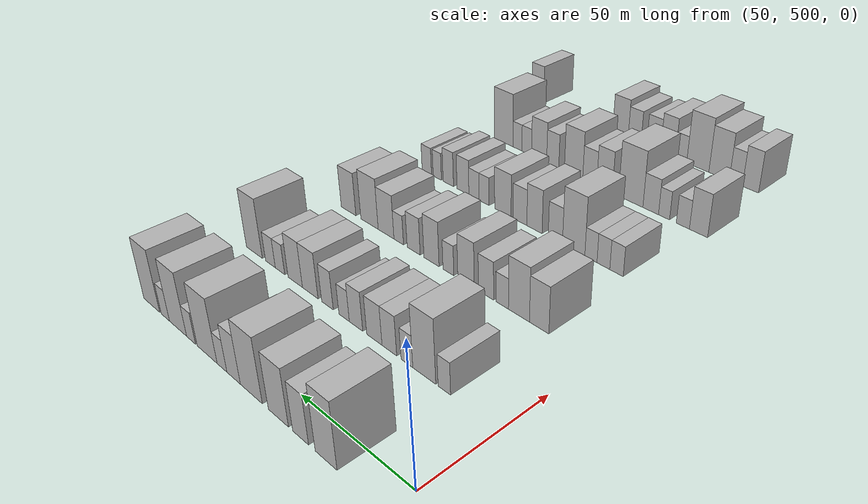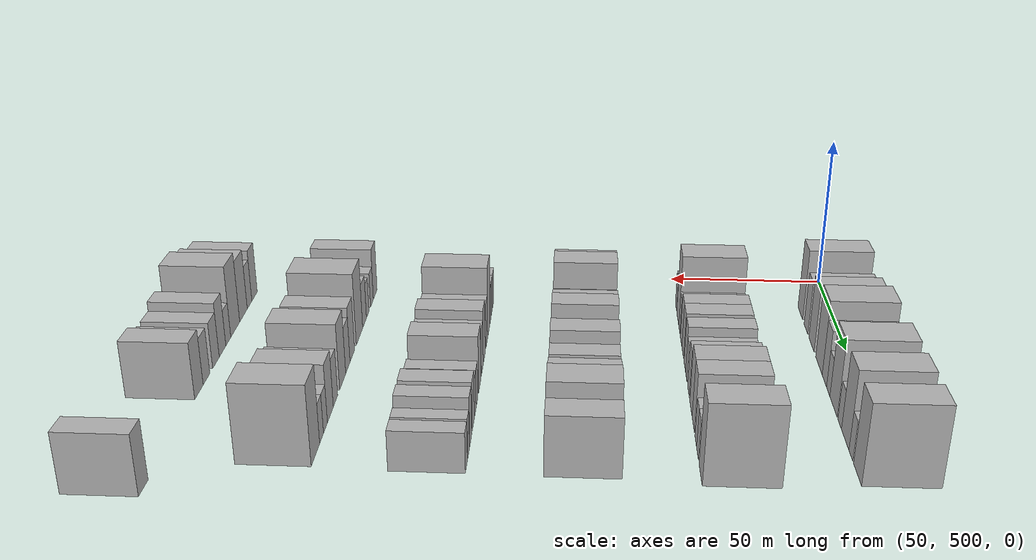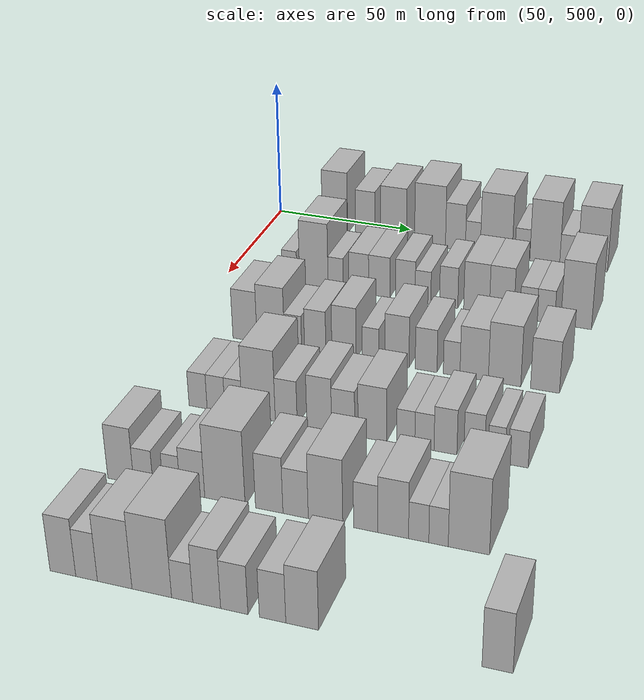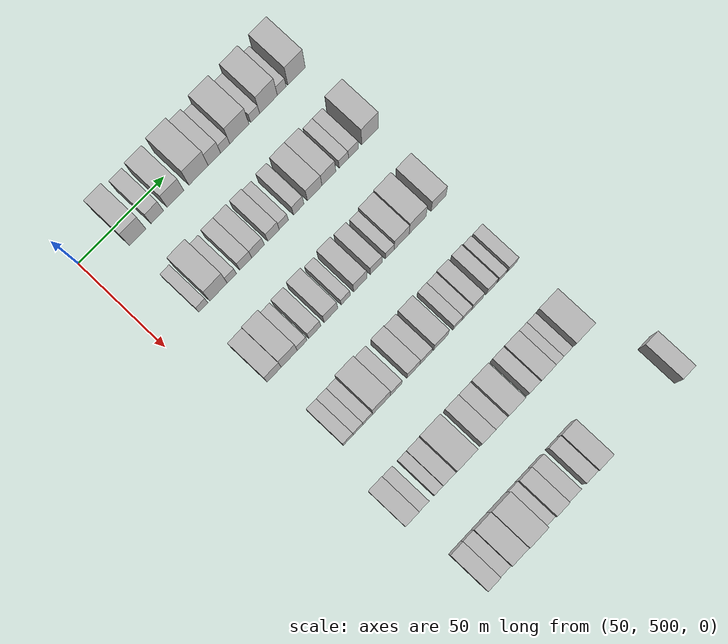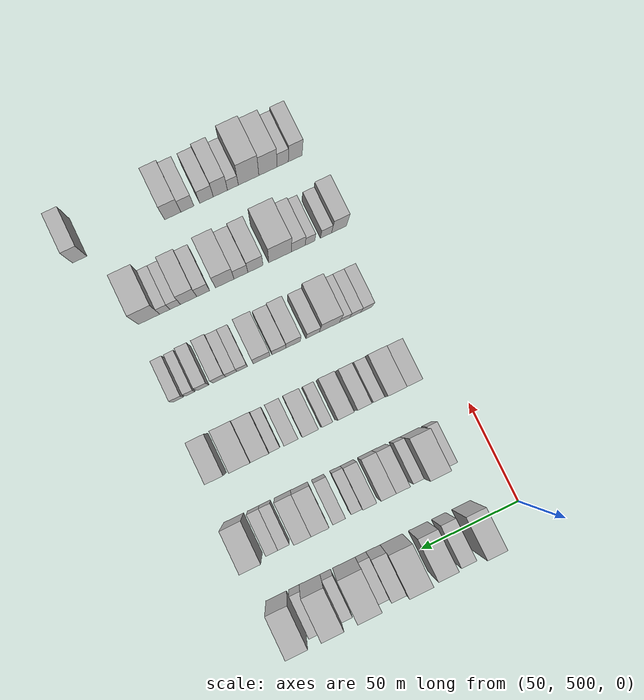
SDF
<sdf version="1.6">
 <world name="default">
  <model name="building_128">
   <static>1</static>
   <pose>50.0000 524.6052 0 0.000000 0.000000 0.000000</pose>
   <link name="link">
    <pose>0 0 12.00 0 0 0</pose>
    <collision name="collision"><geometry><box><size>20.0000 9.6227 24.0000</size></box></geometry></collision>
    <visual name="visual">
     <cast_shadows>0</cast_shadows>
     <geometry><box><size>20.0000 9.6227 24.0000</size></box></geometry>
     <material>
      <script>
       <uri>model://HANNAS_wall/materials/scripts</uri>
       <uri>model://HANNAS_wall/materials/textures</uri>
       <name>vrc/HANNAS_wall</name>
      </script>
     </material>
    </visual>
   </link>
  </model>
  <model name="building_129">
   <static>1</static>
   <pose>50.0000 536.1047 0 0.000000 0.000000 0.000000</pose>
   <link name="link">
    <pose>0 0 9.00 0 0 0</pose>
    <collision name="collision"><geometry><box><size>20.0000 7.3763 18.0000</size></box></geometry></collision>
    <visual name="visual">
     <cast_shadows>0</cast_shadows>
     <geometry><box><size>20.0000 7.3763 18.0000</size></box></geometry>
     <material>
      <script>
       <uri>model://HANNAS_wall/materials/scripts</uri>
       <uri>model://HANNAS_wall/materials/textures</uri>
       <name>vrc/HANNAS_wall</name>
      </script>
     </material>
    </visual>
   </link>
  </model>
  <model name="building_130">
   <static>1</static>
   <pose>50.0000 546.7052 0 0.000000 0.000000 0.000000</pose>
   <link name="link">
    <pose>0 0 10.50 0 0 0</pose>
    <collision name="collision"><geometry><box><size>20.0000 9.8247 21.0000</size></box></geometry></collision>
    <visual name="visual">
     <cast_shadows>0</cast_shadows>
     <geometry><box><size>20.0000 9.8247 21.0000</size></box></geometry>
     <material>
      <script>
       <uri>model://HANNAS_wall/materials/scripts</uri>
       <uri>model://HANNAS_wall/materials/textures</uri>
       <name>vrc/HANNAS_wall</name>
      </script>
     </material>
    </visual>
   </link>
  </model>
  <model name="building_131">
   <static>1</static>
   <pose>50.0000 560.3144 0 0.000000 0.000000 0.000000</pose>
   <link name="link">
    <pose>0 0 12.00 0 0 0</pose>
    <collision name="collision"><geometry><box><size>20.0000 11.3936 24.0000</size></box></geometry></collision>
    <visual name="visual">
     <cast_shadows>0</cast_shadows>
     <geometry><box><size>20.0000 11.3936 24.0000</size></box></geometry>
     <material>
      <script>
       <uri>model://HANNAS_wall/materials/scripts</uri>
       <uri>model://HANNAS_wall/materials/textures</uri>
       <name>vrc/HANNAS_wall</name>
      </script>
     </material>
    </visual>
   </link>
  </model>
  <model name="building_132">
   <static>1</static>
   <pose>50.0000 569.6545 0 0.000000 0.000000 0.000000</pose>
   <link name="link">
    <pose>0 0 9.00 0 0 0</pose>
    <collision name="collision"><geometry><box><size>20.0000 7.2866 18.0000</size></box></geometry></collision>
    <visual name="visual">
     <cast_shadows>0</cast_shadows>
     <geometry><box><size>20.0000 7.2866 18.0000</size></box></geometry>
     <material>
      <script>
       <uri>model://HANNAS_wall/materials/scripts</uri>
       <uri>model://HANNAS_wall/materials/textures</uri>
       <name>vrc/HANNAS_wall</name>
      </script>
     </material>
    </visual>
   </link>
  </model>
  <model name="building_133">
   <static>1</static>
   <pose>50.0000 576.0058 0 0.000000 0.000000 0.000000</pose>
   <link name="link">
    <pose>0 0 6.00 0 0 0</pose>
    <collision name="collision"><geometry><box><size>20.0000 5.4160 12.0000</size></box></geometry></collision>
    <visual name="visual">
     <cast_shadows>0</cast_shadows>
     <geometry><box><size>20.0000 5.4160 12.0000</size></box></geometry>
     <material>
      <script>
       <uri>model://HANNAS_wall/materials/scripts</uri>
       <uri>model://HANNAS_wall/materials/textures</uri>
       <name>vrc/HANNAS_wall</name>
      </script>
     </material>
    </visual>
   </link>
  </model>
  <model name="building_134">
   <static>1</static>
   <pose>50.0000 584.4418 0 0.000000 0.000000 0.000000</pose>
   <link name="link">
    <pose>0 0 12.00 0 0 0</pose>
    <collision name="collision"><geometry><box><size>20.0000 11.4560 24.0000</size></box></geometry></collision>
    <visual name="visual">
     <cast_shadows>0</cast_shadows>
     <geometry><box><size>20.0000 11.4560 24.0000</size></box></geometry>
     <material>
      <script>
       <uri>model://HANNAS_wall/materials/scripts</uri>
       <uri>model://HANNAS_wall/materials/textures</uri>
       <name>vrc/HANNAS_wall</name>
      </script>
     </material>
    </visual>
   </link>
  </model>
  <model name="building_135">
   <static>1</static>
   <pose>50.0000 593.8363 0 0.000000 0.000000 0.000000</pose>
   <link name="link">
    <pose>0 0 6.00 0 0 0</pose>
    <collision name="collision"><geometry><box><size>20.0000 5.3330 12.0000</size></box></geometry></collision>
    <visual name="visual">
     <cast_shadows>0</cast_shadows>
     <geometry><box><size>20.0000 5.3330 12.0000</size></box></geometry>
     <material>
      <script>
       <uri>model://HANNAS_wall/materials/scripts</uri>
       <uri>model://HANNAS_wall/materials/textures</uri>
       <name>vrc/HANNAS_wall</name>
      </script>
     </material>
    </visual>
   </link>
  </model>
  <model name="building_136">
   <static>1</static>
   <pose>50.0000 601.8029 0 0.000000 0.000000 0.000000</pose>
   <link name="link">
    <pose>0 0 12.00 0 0 0</pose>
    <collision name="collision"><geometry><box><size>20.0000 10.6002 24.0000</size></box></geometry></collision>
    <visual name="visual">
     <cast_shadows>0</cast_shadows>
     <geometry><box><size>20.0000 10.6002 24.0000</size></box></geometry>
     <material>
      <script>
       <uri>model://HANNAS_wall/materials/scripts</uri>
       <uri>model://HANNAS_wall/materials/textures</uri>
       <name>vrc/HANNAS_wall</name>
      </script>
     </material>
    </visual>
   </link>
  </model>
  <model name="building_137">
   <static>1</static>
   <pose>50.0000 609.7264 0 0.000000 0.000000 0.000000</pose>
   <link name="link">
    <pose>0 0 6.00 0 0 0</pose>
    <collision name="collision"><geometry><box><size>20.0000 5.2469 12.0000</size></box></geometry></collision>
    <visual name="visual">
     <cast_shadows>0</cast_shadows>
     <geometry><box><size>20.0000 5.2469 12.0000</size></box></geometry>
     <material>
      <script>
       <uri>model://HANNAS_wall/materials/scripts</uri>
       <uri>model://HANNAS_wall/materials/textures</uri>
       <name>vrc/HANNAS_wall</name>
      </script>
     </material>
    </visual>
   </link>
  </model>
  <model name="building_138">
   <static>1</static>
   <pose>50.0000 618.5615 0 0.000000 0.000000 0.000000</pose>
   <link name="link">
    <pose>0 0 12.00 0 0 0</pose>
    <collision name="collision"><geometry><box><size>20.0000 10.4233 24.0000</size></box></geometry></collision>
    <visual name="visual">
     <cast_shadows>0</cast_shadows>
     <geometry><box><size>20.0000 10.4233 24.0000</size></box></geometry>
     <material>
      <script>
       <uri>model://HANNAS_wall/materials/scripts</uri>
       <uri>model://HANNAS_wall/materials/textures</uri>
       <name>vrc/HANNAS_wall</name>
      </script>
     </material>
    </visual>
   </link>
  </model>
  <model name="building_252">
   <static>1</static>
   <pose>90.0000 522.3518 0 0.000000 0.000000 0.000000</pose>
   <link name="link">
    <pose>0 0 6.00 0 0 0</pose>
    <collision name="collision"><geometry><box><size>20.0000 5.3319 12.0000</size></box></geometry></collision>
    <visual name="visual">
     <cast_shadows>0</cast_shadows>
     <geometry><box><size>20.0000 5.3319 12.0000</size></box></geometry>
     <material>
      <script>
       <uri>model://HANNAS_wall/materials/scripts</uri>
       <uri>model://HANNAS_wall/materials/textures</uri>
       <name>vrc/HANNAS_wall</name>
      </script>
     </material>
    </visual>
   </link>
  </model>
  <model name="building_253">
   <static>1</static>
   <pose>90.0000 531.1154 0 0.000000 0.000000 0.000000</pose>
   <link name="link">
    <pose>0 0 12.00 0 0 0</pose>
    <collision name="collision"><geometry><box><size>20.0000 10.1952 24.0000</size></box></geometry></collision>
    <visual name="visual">
     <cast_shadows>0</cast_shadows>
     <geometry><box><size>20.0000 10.1952 24.0000</size></box></geometry>
     <material>
      <script>
       <uri>model://HANNAS_wall/materials/scripts</uri>
       <uri>model://HANNAS_wall/materials/textures</uri>
       <name>vrc/HANNAS_wall</name>
      </script>
     </material>
    </visual>
   </link>
  </model>
  <model name="building_254">
   <static>1</static>
   <pose>90.0000 538.9053 0 0.000000 0.000000 0.000000</pose>
   <link name="link">
    <pose>0 0 6.00 0 0 0</pose>
    <collision name="collision"><geometry><box><size>20.0000 5.3845 12.0000</size></box></geometry></collision>
    <visual name="visual">
     <cast_shadows>0</cast_shadows>
     <geometry><box><size>20.0000 5.3845 12.0000</size></box></geometry>
     <material>
      <script>
       <uri>model://HANNAS_wall/materials/scripts</uri>
       <uri>model://HANNAS_wall/materials/textures</uri>
       <name>vrc/HANNAS_wall</name>
      </script>
     </material>
    </visual>
   </link>
  </model>
  <model name="building_255">
   <static>1</static>
   <pose>90.0000 547.0844 0 0.000000 0.000000 0.000000</pose>
   <link name="link">
    <pose>0 0 7.50 0 0 0</pose>
    <collision name="collision"><geometry><box><size>20.0000 6.9738 15.0000</size></box></geometry></collision>
    <visual name="visual">
     <cast_shadows>0</cast_shadows>
     <geometry><box><size>20.0000 6.9738 15.0000</size></box></geometry>
     <material>
      <script>
       <uri>model://HANNAS_wall/materials/scripts</uri>
       <uri>model://HANNAS_wall/materials/textures</uri>
       <name>vrc/HANNAS_wall</name>
      </script>
     </material>
    </visual>
   </link>
  </model>
  <model name="building_256">
   <static>1</static>
   <pose>90.0000 554.2982 0 0.000000 0.000000 0.000000</pose>
   <link name="link">
    <pose>0 0 7.50 0 0 0</pose>
    <collision name="collision"><geometry><box><size>20.0000 7.4538 15.0000</size></box></geometry></collision>
    <visual name="visual">
     <cast_shadows>0</cast_shadows>
     <geometry><box><size>20.0000 7.4538 15.0000</size></box></geometry>
     <material>
      <script>
       <uri>model://HANNAS_wall/materials/scripts</uri>
       <uri>model://HANNAS_wall/materials/textures</uri>
       <name>vrc/HANNAS_wall</name>
      </script>
     </material>
    </visual>
   </link>
  </model>
  <model name="building_257">
   <static>1</static>
   <pose>90.0000 563.4193 0 0.000000 0.000000 0.000000</pose>
   <link name="link">
    <pose>0 0 7.50 0 0 0</pose>
    <collision name="collision"><geometry><box><size>20.0000 6.7883 15.0000</size></box></geometry></collision>
    <visual name="visual">
     <cast_shadows>0</cast_shadows>
     <geometry><box><size>20.0000 6.7883 15.0000</size></box></geometry>
     <material>
      <script>
       <uri>model://HANNAS_wall/materials/scripts</uri>
       <uri>model://HANNAS_wall/materials/textures</uri>
       <name>vrc/HANNAS_wall</name>
      </script>
     </material>
    </visual>
   </link>
  </model>
  <model name="building_258">
   <static>1</static>
   <pose>90.0000 569.5118 0 0.000000 0.000000 0.000000</pose>
   <link name="link">
    <pose>0 0 6.00 0 0 0</pose>
    <collision name="collision"><geometry><box><size>20.0000 5.3968 12.0000</size></box></geometry></collision>
    <visual name="visual">
     <cast_shadows>0</cast_shadows>
     <geometry><box><size>20.0000 5.3968 12.0000</size></box></geometry>
     <material>
      <script>
       <uri>model://HANNAS_wall/materials/scripts</uri>
       <uri>model://HANNAS_wall/materials/textures</uri>
       <name>vrc/HANNAS_wall</name>
      </script>
     </material>
    </visual>
   </link>
  </model>
  <model name="building_259">
   <static>1</static>
   <pose>90.0000 578.3312 0 0.000000 0.000000 0.000000</pose>
   <link name="link">
    <pose>0 0 7.50 0 0 0</pose>
    <collision name="collision"><geometry><box><size>20.0000 6.2419 15.0000</size></box></geometry></collision>
    <visual name="visual">
     <cast_shadows>0</cast_shadows>
     <geometry><box><size>20.0000 6.2419 15.0000</size></box></geometry>
     <material>
      <script>
       <uri>model://HANNAS_wall/materials/scripts</uri>
       <uri>model://HANNAS_wall/materials/textures</uri>
       <name>vrc/HANNAS_wall</name>
      </script>
     </material>
    </visual>
   </link>
  </model>
  <model name="building_260">
   <static>1</static>
   <pose>90.0000 587.7940 0 0.000000 0.000000 0.000000</pose>
   <link name="link">
    <pose>0 0 9.00 0 0 0</pose>
    <collision name="collision"><geometry><box><size>20.0000 8.6838 18.0000</size></box></geometry></collision>
    <visual name="visual">
     <cast_shadows>0</cast_shadows>
     <geometry><box><size>20.0000 8.6838 18.0000</size></box></geometry>
     <material>
      <script>
       <uri>model://HANNAS_wall/materials/scripts</uri>
       <uri>model://HANNAS_wall/materials/textures</uri>
       <name>vrc/HANNAS_wall</name>
      </script>
     </material>
    </visual>
   </link>
  </model>
  <model name="building_261">
   <static>1</static>
   <pose>90.0000 596.2666 0 0.000000 0.000000 0.000000</pose>
   <link name="link">
    <pose>0 0 9.00 0 0 0</pose>
    <collision name="collision"><geometry><box><size>20.0000 8.2614 18.0000</size></box></geometry></collision>
    <visual name="visual">
     <cast_shadows>0</cast_shadows>
     <geometry><box><size>20.0000 8.2614 18.0000</size></box></geometry>
     <material>
      <script>
       <uri>model://HANNAS_wall/materials/scripts</uri>
       <uri>model://HANNAS_wall/materials/textures</uri>
       <name>vrc/HANNAS_wall</name>
      </script>
     </material>
    </visual>
   </link>
  </model>
  <model name="building_262">
   <static>1</static>
   <pose>90.0000 605.2082 0 0.000000 0.000000 0.000000</pose>
   <link name="link">
    <pose>0 0 6.00 0 0 0</pose>
    <collision name="collision"><geometry><box><size>20.0000 5.6216 12.0000</size></box></geometry></collision>
    <visual name="visual">
     <cast_shadows>0</cast_shadows>
     <geometry><box><size>20.0000 5.6216 12.0000</size></box></geometry>
     <material>
      <script>
       <uri>model://HANNAS_wall/materials/scripts</uri>
       <uri>model://HANNAS_wall/materials/textures</uri>
       <name>vrc/HANNAS_wall</name>
      </script>
     </material>
    </visual>
   </link>
  </model>
  <model name="building_263">
   <static>1</static>
   <pose>90.0000 610.9724 0 0.000000 0.000000 0.000000</pose>
   <link name="link">
    <pose>0 0 6.00 0 0 0</pose>
    <collision name="collision"><geometry><box><size>20.0000 5.9069 12.0000</size></box></geometry></collision>
    <visual name="visual">
     <cast_shadows>0</cast_shadows>
     <geometry><box><size>20.0000 5.9069 12.0000</size></box></geometry>
     <material>
      <script>
       <uri>model://HANNAS_wall/materials/scripts</uri>
       <uri>model://HANNAS_wall/materials/textures</uri>
       <name>vrc/HANNAS_wall</name>
      </script>
     </material>
    </visual>
   </link>
  </model>
  <model name="building_264">
   <static>1</static>
   <pose>90.0000 620.9417 0 0.000000 0.000000 0.000000</pose>
   <link name="link">
    <pose>0 0 12.00 0 0 0</pose>
    <collision name="collision"><geometry><box><size>20.0000 10.0317 24.0000</size></box></geometry></collision>
    <visual name="visual">
     <cast_shadows>0</cast_shadows>
     <geometry><box><size>20.0000 10.0317 24.0000</size></box></geometry>
     <material>
      <script>
       <uri>model://HANNAS_wall/materials/scripts</uri>
       <uri>model://HANNAS_wall/materials/textures</uri>
       <name>vrc/HANNAS_wall</name>
      </script>
     </material>
    </visual>
   </link>
  </model>
  <model name="building_390">
   <static>1</static>
   <pose>130.0000 522.4029 0 0.000000 0.000000 0.000000</pose>
   <link name="link">
    <pose>0 0 9.00 0 0 0</pose>
    <collision name="collision"><geometry><box><size>20.0000 8.2795 18.0000</size></box></geometry></collision>
    <visual name="visual">
     <cast_shadows>0</cast_shadows>
     <geometry><box><size>20.0000 8.2795 18.0000</size></box></geometry>
     <material>
      <script>
       <uri>model://HANNAS_wall/materials/scripts</uri>
       <uri>model://HANNAS_wall/materials/textures</uri>
       <name>vrc/HANNAS_wall</name>
      </script>
     </material>
    </visual>
   </link>
  </model>
  <model name="building_391">
   <static>1</static>
   <pose>130.0000 531.1866 0 0.000000 0.000000 0.000000</pose>
   <link name="link">
    <pose>0 0 10.50 0 0 0</pose>
    <collision name="collision"><geometry><box><size>20.0000 9.2880 21.0000</size></box></geometry></collision>
    <visual name="visual">
     <cast_shadows>0</cast_shadows>
     <geometry><box><size>20.0000 9.2880 21.0000</size></box></geometry>
     <material>
      <script>
       <uri>model://HANNAS_wall/materials/scripts</uri>
       <uri>model://HANNAS_wall/materials/textures</uri>
       <name>vrc/HANNAS_wall</name>
      </script>
     </material>
    </visual>
   </link>
  </model>
  <model name="building_392">
   <static>1</static>
   <pose>130.0000 538.7046 0 0.000000 0.000000 0.000000</pose>
   <link name="link">
    <pose>0 0 6.00 0 0 0</pose>
    <collision name="collision"><geometry><box><size>20.0000 5.7480 12.0000</size></box></geometry></collision>
    <visual name="visual">
     <cast_shadows>0</cast_shadows>
     <geometry><box><size>20.0000 5.7480 12.0000</size></box></geometry>
     <material>
      <script>
       <uri>model://HANNAS_wall/materials/scripts</uri>
       <uri>model://HANNAS_wall/materials/textures</uri>
       <name>vrc/HANNAS_wall</name>
      </script>
     </material>
    </visual>
   </link>
  </model>
  <model name="building_393">
   <static>1</static>
   <pose>130.0000 546.1189 0 0.000000 0.000000 0.000000</pose>
   <link name="link">
    <pose>0 0 7.50 0 0 0</pose>
    <collision name="collision"><geometry><box><size>20.0000 7.0806 15.0000</size></box></geometry></collision>
    <visual name="visual">
     <cast_shadows>0</cast_shadows>
     <geometry><box><size>20.0000 7.0806 15.0000</size></box></geometry>
     <material>
      <script>
       <uri>model://HANNAS_wall/materials/scripts</uri>
       <uri>model://HANNAS_wall/materials/textures</uri>
       <name>vrc/HANNAS_wall</name>
      </script>
     </material>
    </visual>
   </link>
  </model>
  <model name="building_394">
   <static>1</static>
   <pose>130.0000 555.6378 0 0.000000 0.000000 0.000000</pose>
   <link name="link">
    <pose>0 0 9.00 0 0 0</pose>
    <collision name="collision"><geometry><box><size>20.0000 7.9571 18.0000</size></box></geometry></collision>
    <visual name="visual">
     <cast_shadows>0</cast_shadows>
     <geometry><box><size>20.0000 7.9571 18.0000</size></box></geometry>
     <material>
      <script>
       <uri>model://HANNAS_wall/materials/scripts</uri>
       <uri>model://HANNAS_wall/materials/textures</uri>
       <name>vrc/HANNAS_wall</name>
      </script>
     </material>
    </visual>
   </link>
  </model>
  <model name="building_395">
   <static>1</static>
   <pose>130.0000 564.3214 0 0.000000 0.000000 0.000000</pose>
   <link name="link">
    <pose>0 0 6.00 0 0 0</pose>
    <collision name="collision"><geometry><box><size>20.0000 5.4102 12.0000</size></box></geometry></collision>
    <visual name="visual">
     <cast_shadows>0</cast_shadows>
     <geometry><box><size>20.0000 5.4102 12.0000</size></box></geometry>
     <material>
      <script>
       <uri>model://HANNAS_wall/materials/scripts</uri>
       <uri>model://HANNAS_wall/materials/textures</uri>
       <name>vrc/HANNAS_wall</name>
      </script>
     </material>
    </visual>
   </link>
  </model>
  <model name="building_396">
   <static>1</static>
   <pose>130.0000 572.9324 0 0.000000 0.000000 0.000000</pose>
   <link name="link">
    <pose>0 0 9.00 0 0 0</pose>
    <collision name="collision"><geometry><box><size>20.0000 7.8116 18.0000</size></box></geometry></collision>
    <visual name="visual">
     <cast_shadows>0</cast_shadows>
     <geometry><box><size>20.0000 7.8116 18.0000</size></box></geometry>
     <material>
      <script>
       <uri>model://HANNAS_wall/materials/scripts</uri>
       <uri>model://HANNAS_wall/materials/textures</uri>
       <name>vrc/HANNAS_wall</name>
      </script>
     </material>
    </visual>
   </link>
  </model>
  <model name="building_397">
   <static>1</static>
   <pose>130.0000 582.3221 0 0.000000 0.000000 0.000000</pose>
   <link name="link">
    <pose>0 0 7.50 0 0 0</pose>
    <collision name="collision"><geometry><box><size>20.0000 6.9679 15.0000</size></box></geometry></collision>
    <visual name="visual">
     <cast_shadows>0</cast_shadows>
     <geometry><box><size>20.0000 6.9679 15.0000</size></box></geometry>
     <material>
      <script>
       <uri>model://HANNAS_wall/materials/scripts</uri>
       <uri>model://HANNAS_wall/materials/textures</uri>
       <name>vrc/HANNAS_wall</name>
      </script>
     </material>
    </visual>
   </link>
  </model>
  <model name="building_398">
   <static>1</static>
   <pose>130.0000 590.4375 0 0.000000 0.000000 0.000000</pose>
   <link name="link">
    <pose>0 0 6.00 0 0 0</pose>
    <collision name="collision"><geometry><box><size>20.0000 5.2628 12.0000</size></box></geometry></collision>
    <visual name="visual">
     <cast_shadows>0</cast_shadows>
     <geometry><box><size>20.0000 5.2628 12.0000</size></box></geometry>
     <material>
      <script>
       <uri>model://HANNAS_wall/materials/scripts</uri>
       <uri>model://HANNAS_wall/materials/textures</uri>
       <name>vrc/HANNAS_wall</name>
      </script>
     </material>
    </visual>
   </link>
  </model>
  <model name="building_399">
   <static>1</static>
   <pose>130.0000 597.5329 0 0.000000 0.000000 0.000000</pose>
   <link name="link">
    <pose>0 0 9.00 0 0 0</pose>
    <collision name="collision"><geometry><box><size>20.0000 8.9281 18.0000</size></box></geometry></collision>
    <visual name="visual">
     <cast_shadows>0</cast_shadows>
     <geometry><box><size>20.0000 8.9281 18.0000</size></box></geometry>
     <material>
      <script>
       <uri>model://HANNAS_wall/materials/scripts</uri>
       <uri>model://HANNAS_wall/materials/textures</uri>
       <name>vrc/HANNAS_wall</name>
      </script>
     </material>
    </visual>
   </link>
  </model>
  <model name="building_400">
   <static>1</static>
   <pose>130.0000 607.0499 0 0.000000 0.000000 0.000000</pose>
   <link name="link">
    <pose>0 0 10.50 0 0 0</pose>
    <collision name="collision"><geometry><box><size>20.0000 10.1058 21.0000</size></box></geometry></collision>
    <visual name="visual">
     <cast_shadows>0</cast_shadows>
     <geometry><box><size>20.0000 10.1058 21.0000</size></box></geometry>
     <material>
      <script>
       <uri>model://HANNAS_wall/materials/scripts</uri>
       <uri>model://HANNAS_wall/materials/textures</uri>
       <name>vrc/HANNAS_wall</name>
      </script>
     </material>
    </visual>
   </link>
  </model>
  <model name="building_401">
   <static>1</static>
   <pose>130.0000 619.5442 0 0.000000 0.000000 0.000000</pose>
   <link name="link">
    <pose>0 0 9.00 0 0 0</pose>
    <collision name="collision"><geometry><box><size>20.0000 8.8828 18.0000</size></box></geometry></collision>
    <visual name="visual">
     <cast_shadows>0</cast_shadows>
     <geometry><box><size>20.0000 8.8828 18.0000</size></box></geometry>
     <material>
      <script>
       <uri>model://HANNAS_wall/materials/scripts</uri>
       <uri>model://HANNAS_wall/materials/textures</uri>
       <name>vrc/HANNAS_wall</name>
      </script>
     </material>
    </visual>
   </link>
  </model>
  <model name="building_522">
   <static>1</static>
   <pose>170.0000 523.8265 0 0.000000 0.000000 0.000000</pose>
   <link name="link">
    <pose>0 0 6.00 0 0 0</pose>
    <collision name="collision"><geometry><box><size>20.0000 5.8027 12.0000</size></box></geometry></collision>
    <visual name="visual">
     <cast_shadows>0</cast_shadows>
     <geometry><box><size>20.0000 5.8027 12.0000</size></box></geometry>
     <material>
      <script>
       <uri>model://HANNAS_wall/materials/scripts</uri>
       <uri>model://HANNAS_wall/materials/textures</uri>
       <name>vrc/HANNAS_wall</name>
      </script>
     </material>
    </visual>
   </link>
  </model>
  <model name="building_523">
   <static>1</static>
   <pose>170.0000 529.5669 0 0.000000 0.000000 0.000000</pose>
   <link name="link">
    <pose>0 0 6.00 0 0 0</pose>
    <collision name="collision"><geometry><box><size>20.0000 5.6780 12.0000</size></box></geometry></collision>
    <visual name="visual">
     <cast_shadows>0</cast_shadows>
     <geometry><box><size>20.0000 5.6780 12.0000</size></box></geometry>
     <material>
      <script>
       <uri>model://HANNAS_wall/materials/scripts</uri>
       <uri>model://HANNAS_wall/materials/textures</uri>
       <name>vrc/HANNAS_wall</name>
      </script>
     </material>
    </visual>
   </link>
  </model>
  <model name="building_524">
   <static>1</static>
   <pose>170.0000 535.1522 0 0.000000 0.000000 0.000000</pose>
   <link name="link">
    <pose>0 0 6.00 0 0 0</pose>
    <collision name="collision"><geometry><box><size>20.0000 5.4926 12.0000</size></box></geometry></collision>
    <visual name="visual">
     <cast_shadows>0</cast_shadows>
     <geometry><box><size>20.0000 5.4926 12.0000</size></box></geometry>
     <material>
      <script>
       <uri>model://HANNAS_wall/materials/scripts</uri>
       <uri>model://HANNAS_wall/materials/textures</uri>
       <name>vrc/HANNAS_wall</name>
      </script>
     </material>
    </visual>
   </link>
  </model>
  <model name="building_525">
   <static>1</static>
   <pose>170.0000 543.0948 0 0.000000 0.000000 0.000000</pose>
   <link name="link">
    <pose>0 0 12.00 0 0 0</pose>
    <collision name="collision"><geometry><box><size>20.0000 10.3926 24.0000</size></box></geometry></collision>
    <visual name="visual">
     <cast_shadows>0</cast_shadows>
     <geometry><box><size>20.0000 10.3926 24.0000</size></box></geometry>
     <material>
      <script>
       <uri>model://HANNAS_wall/materials/scripts</uri>
       <uri>model://HANNAS_wall/materials/textures</uri>
       <name>vrc/HANNAS_wall</name>
      </script>
     </material>
    </visual>
   </link>
  </model>
  <model name="building_526">
   <static>1</static>
   <pose>170.0000 551.6947 0 0.000000 0.000000 0.000000</pose>
   <link name="link">
    <pose>0 0 7.50 0 0 0</pose>
    <collision name="collision"><geometry><box><size>20.0000 6.8072 15.0000</size></box></geometry></collision>
    <visual name="visual">
     <cast_shadows>0</cast_shadows>
     <geometry><box><size>20.0000 6.8072 15.0000</size></box></geometry>
     <material>
      <script>
       <uri>model://HANNAS_wall/materials/scripts</uri>
       <uri>model://HANNAS_wall/materials/textures</uri>
       <name>vrc/HANNAS_wall</name>
      </script>
     </material>
    </visual>
   </link>
  </model>
  <model name="building_527">
   <static>1</static>
   <pose>170.0000 561.8811 0 0.000000 0.000000 0.000000</pose>
   <link name="link">
    <pose>0 0 9.00 0 0 0</pose>
    <collision name="collision"><geometry><box><size>20.0000 7.5655 18.0000</size></box></geometry></collision>
    <visual name="visual">
     <cast_shadows>0</cast_shadows>
     <geometry><box><size>20.0000 7.5655 18.0000</size></box></geometry>
     <material>
      <script>
       <uri>model://HANNAS_wall/materials/scripts</uri>
       <uri>model://HANNAS_wall/materials/textures</uri>
       <name>vrc/HANNAS_wall</name>
      </script>
     </material>
    </visual>
   </link>
  </model>
  <model name="building_528">
   <static>1</static>
   <pose>170.0000 569.1934 0 0.000000 0.000000 0.000000</pose>
   <link name="link">
    <pose>0 0 7.50 0 0 0</pose>
    <collision name="collision"><geometry><box><size>20.0000 7.0591 15.0000</size></box></geometry></collision>
    <visual name="visual">
     <cast_shadows>0</cast_shadows>
     <geometry><box><size>20.0000 7.0591 15.0000</size></box></geometry>
     <material>
      <script>
       <uri>model://HANNAS_wall/materials/scripts</uri>
       <uri>model://HANNAS_wall/materials/textures</uri>
       <name>vrc/HANNAS_wall</name>
      </script>
     </material>
    </visual>
   </link>
  </model>
  <model name="building_529">
   <static>1</static>
   <pose>170.0000 578.0154 0 0.000000 0.000000 0.000000</pose>
   <link name="link">
    <pose>0 0 9.00 0 0 0</pose>
    <collision name="collision"><geometry><box><size>20.0000 8.5848 18.0000</size></box></geometry></collision>
    <visual name="visual">
     <cast_shadows>0</cast_shadows>
     <geometry><box><size>20.0000 8.5848 18.0000</size></box></geometry>
     <material>
      <script>
       <uri>model://HANNAS_wall/materials/scripts</uri>
       <uri>model://HANNAS_wall/materials/textures</uri>
       <name>vrc/HANNAS_wall</name>
      </script>
     </material>
    </visual>
   </link>
  </model>
  <model name="building_530">
   <static>1</static>
   <pose>170.0000 588.0018 0 0.000000 0.000000 0.000000</pose>
   <link name="link">
    <pose>0 0 6.00 0 0 0</pose>
    <collision name="collision"><geometry><box><size>20.0000 5.3880 12.0000</size></box></geometry></collision>
    <visual name="visual">
     <cast_shadows>0</cast_shadows>
     <geometry><box><size>20.0000 5.3880 12.0000</size></box></geometry>
     <material>
      <script>
       <uri>model://HANNAS_wall/materials/scripts</uri>
       <uri>model://HANNAS_wall/materials/textures</uri>
       <name>vrc/HANNAS_wall</name>
      </script>
     </material>
    </visual>
   </link>
  </model>
  <model name="building_531">
   <static>1</static>
   <pose>170.0000 593.5299 0 0.000000 0.000000 0.000000</pose>
   <link name="link">
    <pose>0 0 6.00 0 0 0</pose>
    <collision name="collision"><geometry><box><size>20.0000 5.6681 12.0000</size></box></geometry></collision>
    <visual name="visual">
     <cast_shadows>0</cast_shadows>
     <geometry><box><size>20.0000 5.6681 12.0000</size></box></geometry>
     <material>
      <script>
       <uri>model://HANNAS_wall/materials/scripts</uri>
       <uri>model://HANNAS_wall/materials/textures</uri>
       <name>vrc/HANNAS_wall</name>
      </script>
     </material>
    </visual>
   </link>
  </model>
  <model name="building_532">
   <static>1</static>
   <pose>170.0000 599.7158 0 0.000000 0.000000 0.000000</pose>
   <link name="link">
    <pose>0 0 7.50 0 0 0</pose>
    <collision name="collision"><geometry><box><size>20.0000 6.7038 15.0000</size></box></geometry></collision>
    <visual name="visual">
     <cast_shadows>0</cast_shadows>
     <geometry><box><size>20.0000 6.7038 15.0000</size></box></geometry>
     <material>
      <script>
       <uri>model://HANNAS_wall/materials/scripts</uri>
       <uri>model://HANNAS_wall/materials/textures</uri>
       <name>vrc/HANNAS_wall</name>
      </script>
     </material>
    </visual>
   </link>
  </model>
  <model name="building_533">
   <static>1</static>
   <pose>170.0000 608.0713 0 0.000000 0.000000 0.000000</pose>
   <link name="link">
    <pose>0 0 7.50 0 0 0</pose>
    <collision name="collision"><geometry><box><size>20.0000 6.0073 15.0000</size></box></geometry></collision>
    <visual name="visual">
     <cast_shadows>0</cast_shadows>
     <geometry><box><size>20.0000 6.0073 15.0000</size></box></geometry>
     <material>
      <script>
       <uri>model://HANNAS_wall/materials/scripts</uri>
       <uri>model://HANNAS_wall/materials/textures</uri>
       <name>vrc/HANNAS_wall</name>
      </script>
     </material>
    </visual>
   </link>
  </model>
  <model name="building_534">
   <static>1</static>
   <pose>170.0000 614.5113 0 0.000000 0.000000 0.000000</pose>
   <link name="link">
    <pose>0 0 6.00 0 0 0</pose>
    <collision name="collision"><geometry><box><size>20.0000 4.8727 12.0000</size></box></geometry></collision>
    <visual name="visual">
     <cast_shadows>0</cast_shadows>
     <geometry><box><size>20.0000 4.8727 12.0000</size></box></geometry>
     <material>
      <script>
       <uri>model://HANNAS_wall/materials/scripts</uri>
       <uri>model://HANNAS_wall/materials/textures</uri>
       <name>vrc/HANNAS_wall</name>
      </script>
     </material>
    </visual>
   </link>
  </model>
  <model name="building_535">
   <static>1</static>
   <pose>170.0000 620.7755 0 0.000000 0.000000 0.000000</pose>
   <link name="link">
    <pose>0 0 6.00 0 0 0</pose>
    <collision name="collision"><geometry><box><size>20.0000 5.6557 12.0000</size></box></geometry></collision>
    <visual name="visual">
     <cast_shadows>0</cast_shadows>
     <geometry><box><size>20.0000 5.6557 12.0000</size></box></geometry>
     <material>
      <script>
       <uri>model://HANNAS_wall/materials/scripts</uri>
       <uri>model://HANNAS_wall/materials/textures</uri>
       <name>vrc/HANNAS_wall</name>
      </script>
     </material>
    </visual>
   </link>
  </model>
  <model name="building_654">
   <static>1</static>
   <pose>210.0000 518.3791 0 0.000000 0.000000 0.000000</pose>
   <link name="link">
    <pose>0 0 9.00 0 0 0</pose>
    <collision name="collision"><geometry><box><size>20.0000 7.8691 18.0000</size></box></geometry></collision>
    <visual name="visual">
     <cast_shadows>0</cast_shadows>
     <geometry><box><size>20.0000 7.8691 18.0000</size></box></geometry>
     <material>
      <script>
       <uri>model://HANNAS_wall/materials/scripts</uri>
       <uri>model://HANNAS_wall/materials/textures</uri>
       <name>vrc/HANNAS_wall</name>
      </script>
     </material>
    </visual>
   </link>
  </model>
  <model name="building_655">
   <static>1</static>
   <pose>210.0000 525.2302 0 0.000000 0.000000 0.000000</pose>
   <link name="link">
    <pose>0 0 6.00 0 0 0</pose>
    <collision name="collision"><geometry><box><size>20.0000 5.8331 12.0000</size></box></geometry></collision>
    <visual name="visual">
     <cast_shadows>0</cast_shadows>
     <geometry><box><size>20.0000 5.8331 12.0000</size></box></geometry>
     <material>
      <script>
       <uri>model://HANNAS_wall/materials/scripts</uri>
       <uri>model://HANNAS_wall/materials/textures</uri>
       <name>vrc/HANNAS_wall</name>
      </script>
     </material>
    </visual>
   </link>
  </model>
  <model name="building_656">
   <static>1</static>
   <pose>210.0000 533.6715 0 0.000000 0.000000 0.000000</pose>
   <link name="link">
    <pose>0 0 6.00 0 0 0</pose>
    <collision name="collision"><geometry><box><size>20.0000 5.0495 12.0000</size></box></geometry></collision>
    <visual name="visual">
     <cast_shadows>0</cast_shadows>
     <geometry><box><size>20.0000 5.0495 12.0000</size></box></geometry>
     <material>
      <script>
       <uri>model://HANNAS_wall/materials/scripts</uri>
       <uri>model://HANNAS_wall/materials/textures</uri>
       <name>vrc/HANNAS_wall</name>
      </script>
     </material>
    </visual>
   </link>
  </model>
  <model name="building_657">
   <static>1</static>
   <pose>210.0000 539.8177 0 0.000000 0.000000 0.000000</pose>
   <link name="link">
    <pose>0 0 7.50 0 0 0</pose>
    <collision name="collision"><geometry><box><size>20.0000 7.2429 15.0000</size></box></geometry></collision>
    <visual name="visual">
     <cast_shadows>0</cast_shadows>
     <geometry><box><size>20.0000 7.2429 15.0000</size></box></geometry>
     <material>
      <script>
       <uri>model://HANNAS_wall/materials/scripts</uri>
       <uri>model://HANNAS_wall/materials/textures</uri>
       <name>vrc/HANNAS_wall</name>
      </script>
     </material>
    </visual>
   </link>
  </model>
  <model name="building_658">
   <static>1</static>
   <pose>210.0000 549.3162 0 0.000000 0.000000 0.000000</pose>
   <link name="link">
    <pose>0 0 12.00 0 0 0</pose>
    <collision name="collision"><geometry><box><size>20.0000 11.7542 24.0000</size></box></geometry></collision>
    <visual name="visual">
     <cast_shadows>0</cast_shadows>
     <geometry><box><size>20.0000 11.7542 24.0000</size></box></geometry>
     <material>
      <script>
       <uri>model://HANNAS_wall/materials/scripts</uri>
       <uri>model://HANNAS_wall/materials/textures</uri>
       <name>vrc/HANNAS_wall</name>
      </script>
     </material>
    </visual>
   </link>
  </model>
  <model name="building_659">
   <static>1</static>
   <pose>210.0000 562.1174 0 0.000000 0.000000 0.000000</pose>
   <link name="link">
    <pose>0 0 9.00 0 0 0</pose>
    <collision name="collision"><geometry><box><size>20.0000 7.8482 18.0000</size></box></geometry></collision>
    <visual name="visual">
     <cast_shadows>0</cast_shadows>
     <geometry><box><size>20.0000 7.8482 18.0000</size></box></geometry>
     <material>
      <script>
       <uri>model://HANNAS_wall/materials/scripts</uri>
       <uri>model://HANNAS_wall/materials/textures</uri>
       <name>vrc/HANNAS_wall</name>
      </script>
     </material>
    </visual>
   </link>
  </model>
  <model name="building_660">
   <static>1</static>
   <pose>210.0000 569.6310 0 0.000000 0.000000 0.000000</pose>
   <link name="link">
    <pose>0 0 7.50 0 0 0</pose>
    <collision name="collision"><geometry><box><size>20.0000 7.1790 15.0000</size></box></geometry></collision>
    <visual name="visual">
     <cast_shadows>0</cast_shadows>
     <geometry><box><size>20.0000 7.1790 15.0000</size></box></geometry>
     <material>
      <script>
       <uri>model://HANNAS_wall/materials/scripts</uri>
       <uri>model://HANNAS_wall/materials/textures</uri>
       <name>vrc/HANNAS_wall</name>
      </script>
     </material>
    </visual>
   </link>
  </model>
  <model name="building_661">
   <static>1</static>
   <pose>210.0000 578.0598 0 0.000000 0.000000 0.000000</pose>
   <link name="link">
    <pose>0 0 10.50 0 0 0</pose>
    <collision name="collision"><geometry><box><size>20.0000 9.6787 21.0000</size></box></geometry></collision>
    <visual name="visual">
     <cast_shadows>0</cast_shadows>
     <geometry><box><size>20.0000 9.6787 21.0000</size></box></geometry>
     <material>
      <script>
       <uri>model://HANNAS_wall/materials/scripts</uri>
       <uri>model://HANNAS_wall/materials/textures</uri>
       <name>vrc/HANNAS_wall</name>
      </script>
     </material>
    </visual>
   </link>
  </model>
  <model name="building_662">
   <static>1</static>
   <pose>210.0000 589.2139 0 0.000000 0.000000 0.000000</pose>
   <link name="link">
    <pose>0 0 7.50 0 0 0</pose>
    <collision name="collision"><geometry><box><size>20.0000 6.6294 15.0000</size></box></geometry></collision>
    <visual name="visual">
     <cast_shadows>0</cast_shadows>
     <geometry><box><size>20.0000 6.6294 15.0000</size></box></geometry>
     <material>
      <script>
       <uri>model://HANNAS_wall/materials/scripts</uri>
       <uri>model://HANNAS_wall/materials/textures</uri>
       <name>vrc/HANNAS_wall</name>
      </script>
     </material>
    </visual>
   </link>
  </model>
  <model name="building_663">
   <static>1</static>
   <pose>210.0000 596.7650 0 0.000000 0.000000 0.000000</pose>
   <link name="link">
    <pose>0 0 9.00 0 0 0</pose>
    <collision name="collision"><geometry><box><size>20.0000 8.4728 18.0000</size></box></geometry></collision>
    <visual name="visual">
     <cast_shadows>0</cast_shadows>
     <geometry><box><size>20.0000 8.4728 18.0000</size></box></geometry>
     <material>
      <script>
       <uri>model://HANNAS_wall/materials/scripts</uri>
       <uri>model://HANNAS_wall/materials/textures</uri>
       <name>vrc/HANNAS_wall</name>
      </script>
     </material>
    </visual>
   </link>
  </model>
  <model name="building_664">
   <static>1</static>
   <pose>210.0000 603.7423 0 0.000000 0.000000 0.000000</pose>
   <link name="link">
    <pose>0 0 6.00 0 0 0</pose>
    <collision name="collision"><geometry><box><size>20.0000 5.4819 12.0000</size></box></geometry></collision>
    <visual name="visual">
     <cast_shadows>0</cast_shadows>
     <geometry><box><size>20.0000 5.4819 12.0000</size></box></geometry>
     <material>
      <script>
       <uri>model://HANNAS_wall/materials/scripts</uri>
       <uri>model://HANNAS_wall/materials/textures</uri>
       <name>vrc/HANNAS_wall</name>
      </script>
     </material>
    </visual>
   </link>
  </model>
  <model name="building_665">
   <static>1</static>
   <pose>210.0000 609.0972 0 0.000000 0.000000 0.000000</pose>
   <link name="link">
    <pose>0 0 6.00 0 0 0</pose>
    <collision name="collision"><geometry><box><size>20.0000 5.2279 12.0000</size></box></geometry></collision>
    <visual name="visual">
     <cast_shadows>0</cast_shadows>
     <geometry><box><size>20.0000 5.2279 12.0000</size></box></geometry>
     <material>
      <script>
       <uri>model://HANNAS_wall/materials/scripts</uri>
       <uri>model://HANNAS_wall/materials/textures</uri>
       <name>vrc/HANNAS_wall</name>
      </script>
     </material>
    </visual>
   </link>
  </model>
  <model name="building_666">
   <static>1</static>
   <pose>210.0000 617.2011 0 0.000000 0.000000 0.000000</pose>
   <link name="link">
    <pose>0 0 12.00 0 0 0</pose>
    <collision name="collision"><geometry><box><size>20.0000 10.9799 24.0000</size></box></geometry></collision>
    <visual name="visual">
     <cast_shadows>0</cast_shadows>
     <geometry><box><size>20.0000 10.9799 24.0000</size></box></geometry>
     <material>
      <script>
       <uri>model://HANNAS_wall/materials/scripts</uri>
       <uri>model://HANNAS_wall/materials/textures</uri>
       <name>vrc/HANNAS_wall</name>
      </script>
     </material>
    </visual>
   </link>
  </model>
  <model name="building_788">
   <static>1</static>
   <pose>250.0000 522.0405 0 0.000000 0.000000 0.000000</pose>
   <link name="link">
    <pose>0 0 9.00 0 0 0</pose>
    <collision name="collision"><geometry><box><size>20.0000 7.2468 18.0000</size></box></geometry></collision>
    <visual name="visual">
     <cast_shadows>0</cast_shadows>
     <geometry><box><size>20.0000 7.2468 18.0000</size></box></geometry>
     <material>
      <script>
       <uri>model://HANNAS_wall/materials/scripts</uri>
       <uri>model://HANNAS_wall/materials/textures</uri>
       <name>vrc/HANNAS_wall</name>
      </script>
     </material>
    </visual>
   </link>
  </model>
  <model name="building_789">
   <static>1</static>
   <pose>250.0000 528.6789 0 0.000000 0.000000 0.000000</pose>
   <link name="link">
    <pose>0 0 7.50 0 0 0</pose>
    <collision name="collision"><geometry><box><size>20.0000 6.0300 15.0000</size></box></geometry></collision>
    <visual name="visual">
     <cast_shadows>0</cast_shadows>
     <geometry><box><size>20.0000 6.0300 15.0000</size></box></geometry>
     <material>
      <script>
       <uri>model://HANNAS_wall/materials/scripts</uri>
       <uri>model://HANNAS_wall/materials/textures</uri>
       <name>vrc/HANNAS_wall</name>
      </script>
     </material>
    </visual>
   </link>
  </model>
  <model name="building_790">
   <static>1</static>
   <pose>250.0000 536.4636 0 0.000000 0.000000 0.000000</pose>
   <link name="link">
    <pose>0 0 10.50 0 0 0</pose>
    <collision name="collision"><geometry><box><size>20.0000 9.5393 21.0000</size></box></geometry></collision>
    <visual name="visual">
     <cast_shadows>0</cast_shadows>
     <geometry><box><size>20.0000 9.5393 21.0000</size></box></geometry>
     <material>
      <script>
       <uri>model://HANNAS_wall/materials/scripts</uri>
       <uri>model://HANNAS_wall/materials/textures</uri>
       <name>vrc/HANNAS_wall</name>
      </script>
     </material>
    </visual>
   </link>
  </model>
  <model name="building_791">
   <static>1</static>
   <pose>250.0000 546.6129 0 0.000000 0.000000 0.000000</pose>
   <link name="link">
    <pose>0 0 12.00 0 0 0</pose>
    <collision name="collision"><geometry><box><size>20.0000 10.7594 24.0000</size></box></geometry></collision>
    <visual name="visual">
     <cast_shadows>0</cast_shadows>
     <geometry><box><size>20.0000 10.7594 24.0000</size></box></geometry>
     <material>
      <script>
       <uri>model://HANNAS_wall/materials/scripts</uri>
       <uri>model://HANNAS_wall/materials/textures</uri>
       <name>vrc/HANNAS_wall</name>
      </script>
     </material>
    </visual>
   </link>
  </model>
  <model name="building_792">
   <static>1</static>
   <pose>250.0000 554.8432 0 0.000000 0.000000 0.000000</pose>
   <link name="link">
    <pose>0 0 6.00 0 0 0</pose>
    <collision name="collision"><geometry><box><size>20.0000 5.7010 12.0000</size></box></geometry></collision>
    <visual name="visual">
     <cast_shadows>0</cast_shadows>
     <geometry><box><size>20.0000 5.7010 12.0000</size></box></geometry>
     <material>
      <script>
       <uri>model://HANNAS_wall/materials/scripts</uri>
       <uri>model://HANNAS_wall/materials/textures</uri>
       <name>vrc/HANNAS_wall</name>
      </script>
     </material>
    </visual>
   </link>
  </model>
  <model name="building_793">
   <static>1</static>
   <pose>250.0000 561.4054 0 0.000000 0.000000 0.000000</pose>
   <link name="link">
    <pose>0 0 9.00 0 0 0</pose>
    <collision name="collision"><geometry><box><size>20.0000 7.4234 18.0000</size></box></geometry></collision>
    <visual name="visual">
     <cast_shadows>0</cast_shadows>
     <geometry><box><size>20.0000 7.4234 18.0000</size></box></geometry>
     <material>
      <script>
       <uri>model://HANNAS_wall/materials/scripts</uri>
       <uri>model://HANNAS_wall/materials/textures</uri>
       <name>vrc/HANNAS_wall</name>
      </script>
     </material>
    </visual>
   </link>
  </model>
  <model name="building_794">
   <static>1</static>
   <pose>250.0000 568.7034 0 0.000000 0.000000 0.000000</pose>
   <link name="link">
    <pose>0 0 7.50 0 0 0</pose>
    <collision name="collision"><geometry><box><size>20.0000 7.1727 15.0000</size></box></geometry></collision>
    <visual name="visual">
     <cast_shadows>0</cast_shadows>
     <geometry><box><size>20.0000 7.1727 15.0000</size></box></geometry>
     <material>
      <script>
       <uri>model://HANNAS_wall/materials/scripts</uri>
       <uri>model://HANNAS_wall/materials/textures</uri>
       <name>vrc/HANNAS_wall</name>
      </script>
     </material>
    </visual>
   </link>
  </model>
  <model name="building_795">
   <static>1</static>
   <pose>250.0000 578.7222 0 0.000000 0.000000 0.000000</pose>
   <link name="link">
    <pose>0 0 7.50 0 0 0</pose>
    <collision name="collision"><geometry><box><size>20.0000 6.8648 15.0000</size></box></geometry></collision>
    <visual name="visual">
     <cast_shadows>0</cast_shadows>
     <geometry><box><size>20.0000 6.8648 15.0000</size></box></geometry>
     <material>
      <script>
       <uri>model://HANNAS_wall/materials/scripts</uri>
       <uri>model://HANNAS_wall/materials/textures</uri>
       <name>vrc/HANNAS_wall</name>
      </script>
     </material>
    </visual>
   </link>
  </model>
  <model name="building_796">
   <static>1</static>
   <pose>250.0000 586.3686 0 0.000000 0.000000 0.000000</pose>
   <link name="link">
    <pose>0 0 9.00 0 0 0</pose>
    <collision name="collision"><geometry><box><size>20.0000 8.4281 18.0000</size></box></geometry></collision>
    <visual name="visual">
     <cast_shadows>0</cast_shadows>
     <geometry><box><size>20.0000 8.4281 18.0000</size></box></geometry>
     <material>
      <script>
       <uri>model://HANNAS_wall/materials/scripts</uri>
       <uri>model://HANNAS_wall/materials/textures</uri>
       <name>vrc/HANNAS_wall</name>
      </script>
     </material>
    </visual>
   </link>
  </model>
  <model name="building_797">
   <static>1</static>
   <pose>250.0000 634.7535 0 0.000000 0.000000 0.000000</pose>
   <link name="link">
    <pose>0 0 9.00 0 0 0</pose>
    <collision name="collision"><geometry><box><size>20.0000 7.4473 18.0000</size></box></geometry></collision>
    <visual name="visual">
     <cast_shadows>0</cast_shadows>
     <geometry><box><size>20.0000 7.4473 18.0000</size></box></geometry>
     <material>
      <script>
       <uri>model://HANNAS_wall/materials/scripts</uri>
       <uri>model://HANNAS_wall/materials/textures</uri>
       <name>vrc/HANNAS_wall</name>
      </script>
     </material>
    </visual>
   </link>
  </model>
 </world>
</sdf>
